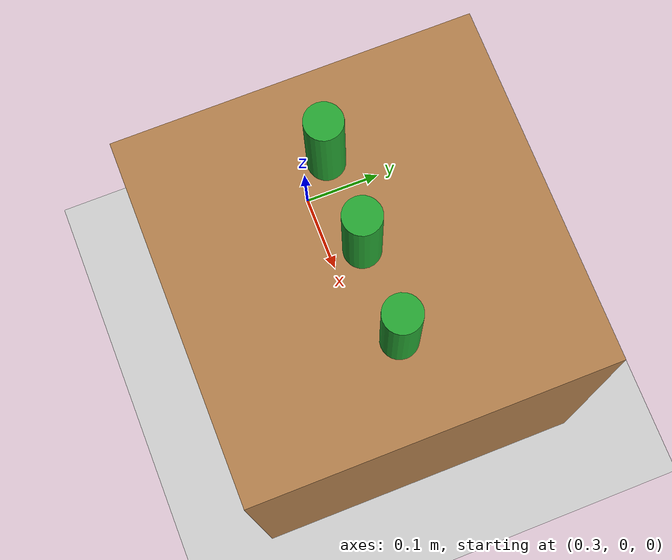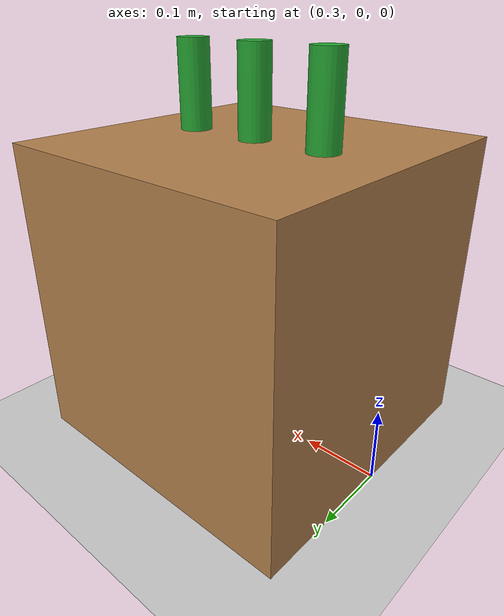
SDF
<?xml version='1.0' ?>
<sdf version='1.4'>
  <world name='empty'>
    <!-- A global light source -->
    <include>
      <uri>model://sun</uri>
    </include>

    <!-- A ground plane -->
    <include>
      <uri>model://ground_plane</uri>
    </include>

    <!-- Physics settings for simulation -->
    <physics type='ode'>
      <max_step_size>0.001</max_step_size>
      <real_time_factor>1</real_time_factor>
      <real_time_update_rate>1000</real_time_update_rate>
      <gravity>0 0 -9.81</gravity>
    </physics>

    <model name='table_box_model'>
      <static>true</static>
      <pose frame=''>0.5 0.0 0.2 0 -0 0</pose>
      <link name='table_box_link'>
        <inertial>
          <mass>1</mass>
          <inertia>
            <ixx>0.166667</ixx>
            <ixy>0</ixy>
            <ixz>0</ixz>
            <iyy>0.166667</iyy>
            <iyz>0</iyz>
            <izz>0.166667</izz>
          </inertia>
        </inertial>
        <collision name='collision'>
          <geometry>
            <box>
              <size>0.4 0.4 0.4</size>
            </box>
          </geometry>
          <max_contacts>10</max_contacts>
          <surface>
            <contact>
              <ode/>
            </contact>
            <bounce/>
            <friction>
              <ode>
                <mu>0.6</mu>
                <mu2>0.6</mu2>
              </ode>
              <torsional>
                <ode/>
              </torsional>
            </friction>
          </surface>
        </collision>
        <visual name='visual'>
          <geometry>
            <box>
              <size>0.4 0.4 0.4</size>
            </box>
          </geometry>
          <material>
            <script>
              <name>Gazebo/WoodFloor</name>
              <uri>file://media/materials/scripts/gazebo.material</uri>
            </script>
          </material>
        </visual>
        <self_collide>0</self_collide>
        <kinematic>0</kinematic>
      </link>
    </model>

    <model name='coke_can_box_model'>
      <pose frame=''>0.4 0 0.41 0 0 0</pose>
      <link name='coke_can'>
        <inertial>
          <mass>0.001</mass>
          <inertia>
            <ixx>0.00001666</ixx>
            <ixy>0</ixy>
            <ixz>0</ixz>
            <iyy>0.00001666</iyy>
            <iyz>0</iyz>
            <izz>0.00001666</izz>
          </inertia>
        </inertial>
        <collision name='collision'>

          <geometry>
            <cylinder>
              <radius>0.02</radius>
              <length>0.2</length>
            </cylinder>
          </geometry>
          <max_contacts>10</max_contacts>
          <surface>
            <friction>
              <ode>
                <mu>100.0</mu>
                <mu2>100.0</mu2>
              </ode>
            </friction>
            <contact>
              <ode>
                <kp>10000000.0</kp>
                <kd>1.0</kd>
                <min_depth>0.001</min_depth>
                <max_vel>0.1</max_vel>
              </ode>
            </contact>
          </surface>
        </collision>
        <visual name='visual'>
          <geometry>
            <cylinder>
              <radius>0.02</radius>
              <length>0.2</length>
            </cylinder>
          </geometry>
          <material>
            <script>
              <name>Gazebo/Green</name>
              <uri>file://media/materials/scripts/gazebo.material</uri>
            </script>
          </material>
        </visual>
        <self_collide>0</self_collide>
        <kinematic>0</kinematic>
      </link>
    </model>

    <model name='coke_can_box_model2'>
      <pose frame=''>0.5 0 0.41 0 0 0</pose>
      <link name='coke_can'>
        <inertial>
          <mass>0.001</mass>
          <inertia>
            <ixx>0.00016</ixx>
            <ixy>0</ixy>
            <ixz>0</ixz>
            <iyy>0.00016</iyy>
            <iyz>0</iyz>
            <izz>0.00006</izz>
          </inertia>
        </inertial>
        <collision name='collision'>

          <geometry>
            <cylinder>
              <radius>0.02</radius>
              <length>0.2</length>
            </cylinder>

          </geometry>
          <max_contacts>10</max_contacts>
          <surface>
            <friction>
              <ode>
                <mu>100.0</mu>
                <mu2>100.0</mu2>
              </ode>
            </friction>
            <contact>
              <ode>
                <kp>10000000.0</kp>
                <kd>1.0</kd>
                <min_depth>0.001</min_depth>
                <max_vel>0.1</max_vel>
              </ode>
            </contact>
          </surface>
        </collision>
        <visual name='visual'>
          <geometry>
            <cylinder>
              <radius>0.02</radius>
              <length>0.2</length>
            </cylinder>
          </geometry>
          <material>
            <script>
              <name>Gazebo/Green</name>
              <uri>file://media/materials/scripts/gazebo.material</uri>
            </script>
          </material>
        </visual>
        <self_collide>0</self_collide>
        <kinematic>0</kinematic>
      </link>
    </model>

    <model name='coke_can_box_model3'>
      <pose frame=''>0.6 0 0.41 0 0 0</pose>
      <link name='coke_can'>
        <inertial>
          <mass>0.001</mass>
          <inertia>
            <ixx>0.00016</ixx>
            <ixy>0</ixy>
            <ixz>0</ixz>
            <iyy>0.00016</iyy>
            <iyz>0</iyz>
            <izz>0.00006</izz>
          </inertia>
        </inertial>
        <collision name='collision'>

          <geometry>
            <cylinder>
              <radius>0.02</radius>
              <length>0.2</length>
            </cylinder>
          </geometry>
          <max_contacts>10</max_contacts>
          <surface>
            <friction>
              <ode>
                <mu>100.0</mu>
                <mu2>100.0</mu2>
              </ode>
            </friction>
            <contact>
              <ode>
                <kp>10000000.0</kp>
                <kd>1.0</kd>
                <min_depth>0.001</min_depth>
                <max_vel>0.1</max_vel>
              </ode>
            </contact>
          </surface>
        </collision>
        <visual name='visual'>
          <geometry>
            <cylinder>
              <radius>0.02</radius>
              <length>0.2</length>
            </cylinder>
          </geometry>
          <material>
            <script>
              <name>Gazebo/Green</name>
              <uri>file://media/materials/scripts/gazebo.material</uri>
            </script>
          </material>
        </visual>
        <self_collide>0</self_collide>
        <kinematic>0</kinematic>
      </link>
    </model>

  </world>
</sdf>
